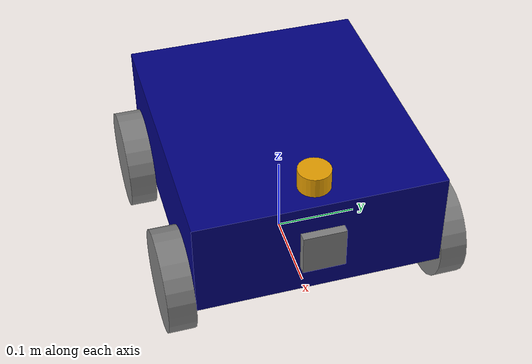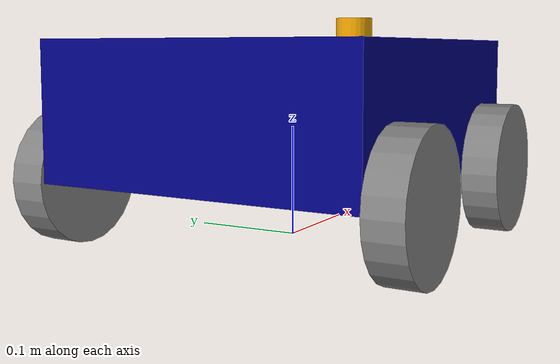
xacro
<?xml version="1.0"?>
<robot name="tomauto1" xmlns:xacro="http://www.ros.org/wiki/xacro">

    <xacro:include filename="common_properties.xacro" />
    <xacro:include filename="mobile_base_gazebo.xacro" />
    <xacro:include filename="mobile_base.xacro" />
    <xacro:include filename="mobile_base.ros2_control.xacro" />
    <xacro:include filename="camera.xacro" />
    <xacro:include filename="lidar.xacro" />
</robot>

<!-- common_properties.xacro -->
<robot xmlns:xacro="http://www.ros.org/wiki/xacro">

    <material name="blue">
        <color rgba="0 0 0.5 1" />
    </material>

    <material name="grey">
        <color rgba="0.5 0.5 0.5 1" />
    </material>

    <material name="yellow">
        <color rgba="0.99 0.99 0 1" />
    </material>

    <xacro:macro name="box_inertia" params="m x y z o_xyz o_rpy">
        <inertial>
            <mass value="${m}" />
            <origin xyz="${o_xyz}" rpy="${o_rpy}" />
            <inertia ixx="${(m/12) * (y*y + z*z)}" ixy="0" ixz="0"
                     iyy="${(m/12) * (x*x + z*z)}" iyz="0"
                     izz="${(m/12) * (x*x + y*y)}" />
        </inertial>
    </xacro:macro>

    <xacro:macro name="cylinder_inertia" params="m r l o_xyz o_rpy">
        <inertial>
            <mass value="${m}" />
            <origin xyz="${o_xyz}" rpy="${o_rpy}" />
            <inertia ixx="${(m/12) * (3*r*r + l*l)}" ixy="0" ixz="0"
                     iyy="${(m/12) * (3*r*r + l*l)}" iyz="0"
                     izz="${(m/2) * (r*r)}" />
        </inertial>
    </xacro:macro>

    <xacro:macro name="sphere_inertia" params="m r o_xyz o_rpy">
        <inertial>
            <mass value="${m}" />
            <origin xyz="${o_xyz}" rpy="${o_rpy}" />
            <inertia ixx="${(2/5) * m * r * r}" ixy="0" ixz="0"
                     iyy="${(2/5) * m * r * r}" iyz="0"
                     izz="${(2/5) * m * r * r}" />
        </inertial>
    </xacro:macro>

</robot>

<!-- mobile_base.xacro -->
<robot xmlns:xacro="http://www.ros.org/wiki/xacro">

    <xacro:property name="base_length" value="0.336" />
    <xacro:property name="base_width" value="0.288" />
    <xacro:property name="base_height" value="0.120" />
    <xacro:property name="wheel_radius" value="0.06" />
    <xacro:property name="wheel_length" value="0.032" />

    <link name="base_footprint" />

    <link name="base_link">
        <visual>
            <geometry>
                <box size="${base_length} ${base_width} ${base_height}" />
            </geometry>
            <origin xyz="0 0 ${base_height / 2.0}" rpy="0 0 0" />
            <material name="blue" />
        </visual>
        <collision>
            <geometry>
                <box size="${base_length} ${base_width} ${base_height}" />
            </geometry>
            <origin xyz="0 0 ${base_height / 2.0}" rpy="0 0 0" />
        </collision>
        <xacro:box_inertia m="5.0" x="${base_length}" y="${base_width}" z="${base_height}"
                            o_xyz="0 0 ${base_height / 2.0}" o_rpy="0 0 0" />
    </link>

    <link name="back_right_wheel_link">
        <visual>
            <geometry>
                <cylinder radius="${wheel_radius}" length="${wheel_length}" />
            </geometry>
            <origin xyz="0 0 0" rpy="${pi / 2.0} 0 0" />
            <material name="grey" />
        </visual>
        <collision>
            <geometry>
                <sphere radius="${wheel_radius}" />
            </geometry>
            <origin xyz="0 0 0" rpy="0 0 0" />
        </collision>
        <xacro:cylinder_inertia m="0.2" r="${wheel_radius}" l="${wheel_length}"
                                o_xyz="0 0 0" o_rpy="${pi / 2.0} 0 0" />
    </link>

    <link name="back_left_wheel_link">
        <visual>
            <geometry>
                <cylinder radius="${wheel_radius}" length="${wheel_length}" />
            </geometry>
            <origin xyz="0 0 0" rpy="${pi / 2.0} 0 0" />
            <material name="grey" />
        </visual>
        <collision>
            <geometry>
                <sphere radius="${wheel_radius}" />
            </geometry>
            <origin xyz="0 0 0" rpy="0 0 0" />
        </collision>
        <xacro:cylinder_inertia m="0.2" r="${wheel_radius}" l="${wheel_length}"
                                o_xyz="0 0 0" o_rpy="${pi / 2.0} 0 0" />
    </link>

    <link name="front_right_wheel_link">
        <visual>
            <geometry>
                <cylinder radius="${wheel_radius}" length="${wheel_length}" />
            </geometry>
            <origin xyz="0 0 0" rpy="${pi / 2.0} 0 0" />
            <material name="grey" />
        </visual>
        <collision>
            <geometry>
                <sphere radius="${wheel_radius}" />
            </geometry>
            <origin xyz="0 0 0" rpy="0 0 0" />
        </collision>
        <xacro:cylinder_inertia m="0.2" r="${wheel_radius}" l="${wheel_length}"
                                o_xyz="0 0 0" o_rpy="${pi / 2.0} 0 0" />
    </link>

    <link name="front_left_wheel_link">
        <visual>
            <geometry>
                <cylinder radius="${wheel_radius}" length="${wheel_length}" />
            </geometry>
            <origin xyz="0 0 0" rpy="${pi / 2.0} 0 0" />
            <material name="grey" />
        </visual>
        <collision>
            <geometry>
                <sphere radius="${wheel_radius}" />
            </geometry>
            <origin xyz="0 0 0" rpy="0 0 0" />
        </collision>
        <xacro:cylinder_inertia m="0.2" r="${wheel_radius}" l="${wheel_length}"
                                o_xyz="0 0 0" o_rpy="${pi / 2.0} 0 0" />
    </link>

    <joint name="base_joint" type="fixed">
        <parent link="base_footprint" />
        <child link="base_link" />
        <origin xyz="0 0 ${wheel_radius}" rpy="0 0 0"/>
    </joint>

    <joint name="back_right_wheel_joint" type="continuous">
        <parent link="base_link" />
        <child link="back_right_wheel_link" />
        <origin xyz="${-base_length / 3.0} ${-(base_width + wheel_length) / 2.0} 0" rpy="0 0 0" />
        <axis xyz="0 1 0" />
    </joint>

    <joint name="back_left_wheel_joint" type="continuous">
        <parent link="base_link" />
        <child link="back_left_wheel_link" />
        <origin xyz="${-base_length / 3.0} ${(base_width + wheel_length) / 2.0} 0" rpy="0 0 0" />
        <axis xyz="0 1 0" />
    </joint>

    <joint name="front_right_wheel_joint" type="continuous">
        <parent link="base_link" />
        <child link="front_right_wheel_link" />
        <origin xyz="${base_length / 3.0} ${-(base_width + wheel_length) / 2.0} 0" rpy="0 0 0" />
        <axis xyz="0 1 0" />
    </joint>

    <joint name="front_left_wheel_joint" type="continuous">
        <parent link="base_link" />
        <child link="front_left_wheel_link" />
        <origin xyz="${base_length / 3.0} ${(base_width + wheel_length) / 2.0} 0" rpy="0 0 0" />
        <axis xyz="0 1 0" />
    </joint>

</robot>

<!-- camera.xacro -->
<robot xmlns:xacro="http://www.ros.org/wiki/xacro">

    <xacro:property name="camera_length" value="0.01" />
    <xacro:property name="camera_width" value="0.05" />
    <xacro:property name="camera_height" value="0.05" />

    <joint name="base_camera_joint" type="fixed">
        <parent link="base_link" />
        <child link="camera_link" />
        <origin xyz="${(base_length + camera_length) / 2.0} 0 ${base_height / 2.0}" rpy="0 0 0" />
    </joint>

    <link name="camera_link">
        <visual>
            <geometry>
                <box size="${camera_length} ${camera_width} ${camera_height}" />
            </geometry>
            <material name="grey" />
        </visual>
        <collision>
            <geometry>
                <box size="${camera_length} ${camera_width} ${camera_height}" />
            </geometry>
        </collision>
    </link>

    <link name="camera_link_optical" />

    <joint name="camera_optical_joint" type="fixed">
        <origin xyz="0 0 0" rpy="${-pi/2} 0 ${-pi/2}"/>
        <parent link="camera_link"/>
        <child link="camera_link_optical"/>
    </joint>

    <gazebo reference="camera_link">
        <sensor name="camera" type="camera">
            <camera>
                <horizontal_fov>1.3962634</horizontal_fov>
                <image>
                    <width>640</width>
                    <height>480</height>
                    <format>R8G8B8</format>
                </image>
                <clip>
                    <near>0.1</near>
                    <far>15</far>
                </clip>
                <noise>
                    <type>gaussian</type>
                    <mean>0.0</mean>
                    <stddev>0.007</stddev>
                </noise>
                <optical_frame_id>camera_link_optical</optical_frame_id>
                <camera_info_topic>camera/camera_info</camera_info_topic>
            </camera>
            <always_on>1</always_on>
            <update_rate>20</update_rate>
            <visualize>true</visualize>
            <topic>camera/image_raw</topic>
        </sensor>
    </gazebo>

</robot>

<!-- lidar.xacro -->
<robot xmlns:xacro="http://www.ros.org/wiki/xacro">
  <!-- Lidar Link Definition -->
  <link name="base_scan">
      <visual>
          <geometry>
              <!-- Example dimensions for a common Lidar -->
              <cylinder radius="0.019" length="0.038"/>
          </geometry>
          <!-- Position the visual relative to the link's origin -->
          <origin xyz="0 0 0" rpy="0 0 0"/>
      </visual>
      <collision>
          <geometry>
              <cylinder radius="0.05" length="0.04"/>
          </geometry>
          <origin xyz="0 0 0" rpy="0 0 0"/>
      </collision>
      <!-- Define inertial properties (simplified example) -->
      <inertial>
          <mass value="0.1"/>
          <origin xyz="0 0 0" rpy="0 0 0"/>
          <inertia ixx="0.0001" ixy="0.0" ixz="0.0" iyy="0.0001" iyz="0.0" izz="0.0001"/>
      </inertial>
  </link>

  <!-- Lidar Joint Definition -->
  <joint name="lidar_joint" type="fixed">
      <parent link="base_link"/>
      <child link="base_scan"/>
      <!-- Position the lidar on top of the parent link (adjust xyz values as needed) -->
      <origin xyz="0.135 0 0.125" rpy="0 0 0"/>
  </joint>

<gazebo reference="base_scan">
  <sensor name="lidar" type="gpu_lidar">
    <pose relative_to="base_scan">0 0 0 0 0 0</pose>
    <always_on>true</always_on>

    <!-- Turning this to false to prevent the annoying gazebo rendering issue -->
    <visualize>false</visualize>
          <update_rate>10</update_rate>
          <topic>scan</topic>
          <gz_frame_id>base_scan</gz_frame_id>
          <lidar>
              <scan>
                  <horizontal>
                      <samples>360</samples>
                      <resolution>1</resolution>
                      <min_angle>-3.14</min_angle>
                      <max_angle>3.14</max_angle>
                  </horizontal>

              </scan>
              <range>
                  <min>0.1</min>
                  <max>10.0</max>
                  <resolution>0.01</resolution>
              </range>
          </lidar>
      </sensor>
  </gazebo>

</robot>
